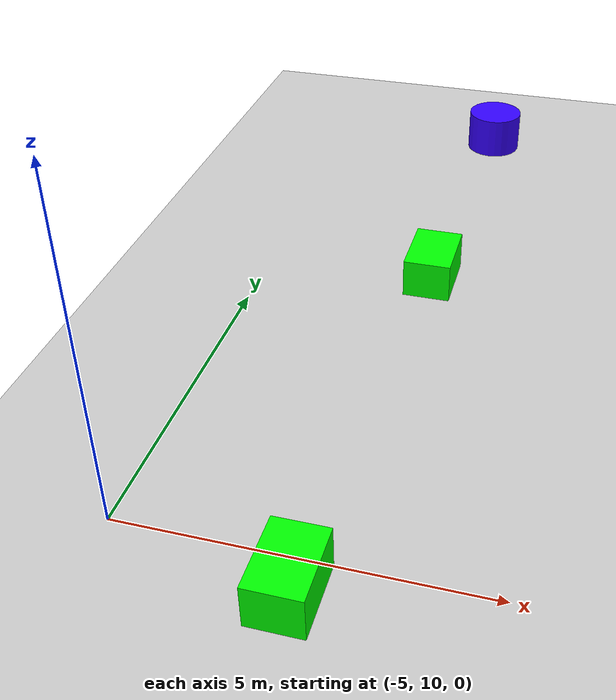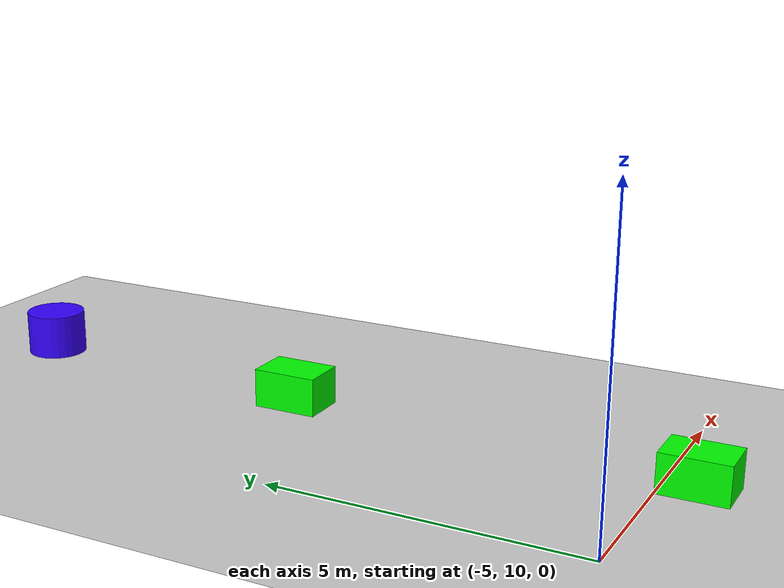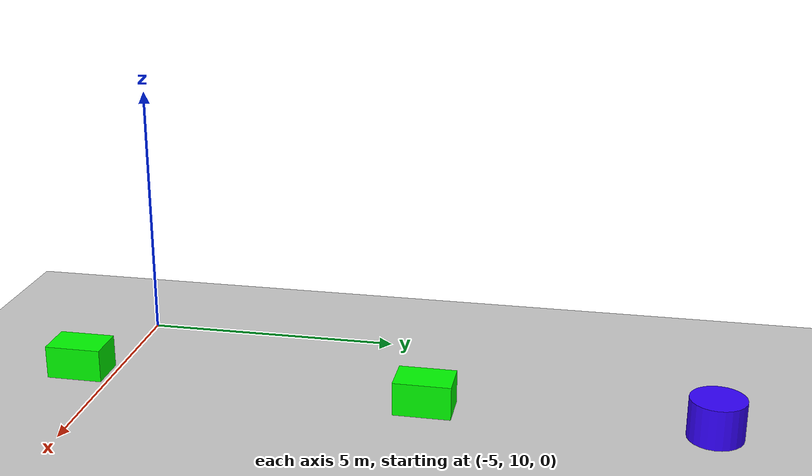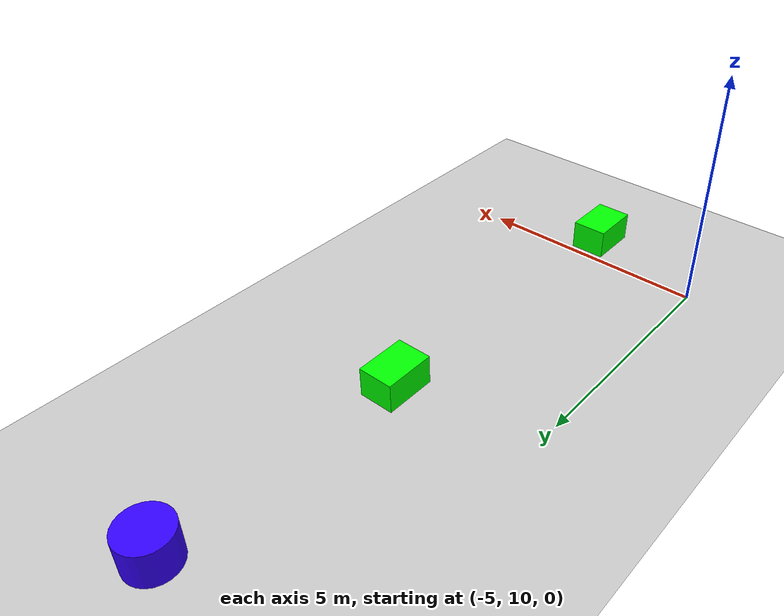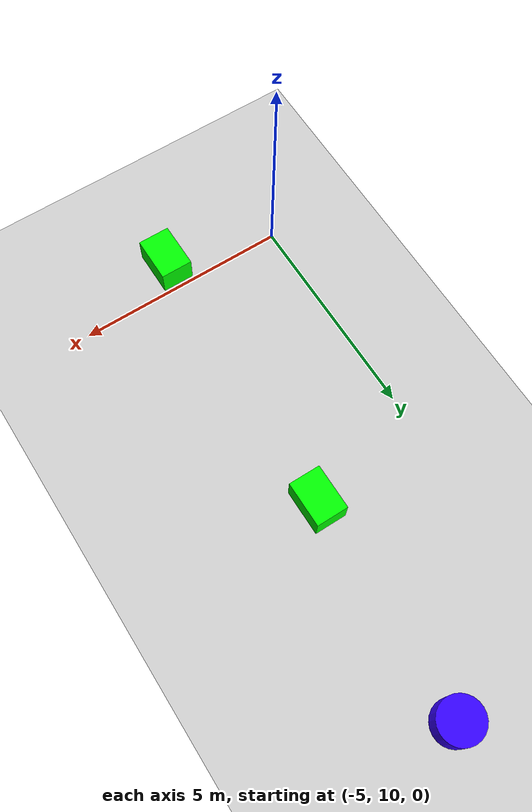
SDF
<sdf version="1.7">
 <world name="default">
  <model name="ground_plane">
   <static>1</static>
   <link name="link">
    <collision name="collision">
     <geometry><plane><normal>0 0 1</normal><size>100 100</size></plane></geometry>
     <surface>
      <contact><collide_bitmask>65535</collide_bitmask></contact>
      <friction><ode><mu>100</mu><mu2>50</mu2></ode></friction>
     </surface>
    </collision>
    <visual name="visual">
     <cast_shadows>0</cast_shadows>
     <geometry><plane><normal>0 0 1</normal><size>100 100</size></plane></geometry>
     <material>
      <script><uri>file://media/materials/scripts/gazebo.material</uri><name>Gazebo/Grey</name></script>
     </material>
    </visual>
   </link>
  </model>
  <model name="green_box_clone_0">
   <link name="link">
    <inertial>
     <mass>1</mass>
     <inertia>
      <ixx>0.166667</ixx>
      <ixy>0</ixy>
      <ixz>0</ixz>
      <iyy>0.166667</iyy>
      <iyz>0</iyz>
      <izz>0.166667</izz>
     </inertia>
    </inertial>
    <visual name="visual">
     <geometry><box><size>0.75 1.07 0.63</size></box></geometry>
     <material>
      <script><name>Gazebo/Grey</name><uri>file://media/materials/scripts/gazebo.material</uri></script>
      <shader type="pixel"><normal_map>__default__</normal_map></shader>
      <ambient>0 1 0 1</ambient>
      <diffuse>0 1 0 1</diffuse>
      <specular>0.01 0.01 0.01 1</specular>
      <emissive>0 0 0 1</emissive>
     </material>
    </visual>
    <collision name="collision">
     <geometry><box><size>0.84 1 0.78</size></box></geometry>
     <surface>
      <friction>
       <ode><mu>1</mu><mu2>1</mu2><fdir1>0 0 0</fdir1><slip1>0</slip1><slip2>0</slip2></ode>
       <torsional>
        <coefficient>1</coefficient>
        <patch_radius>0</patch_radius>
        <surface_radius>0</surface_radius>
        <use_patch_radius>1</use_patch_radius>
        <ode><slip>0</slip></ode>
       </torsional>
      </friction>
      <bounce><restitution_coefficient>0</restitution_coefficient><threshold>1e+06</threshold></bounce>
      <contact>
       <collide_without_contact>0</collide_without_contact>
       <collide_without_contact_bitmask>1</collide_without_contact_bitmask>
       <collide_bitmask>1</collide_bitmask>
       <ode>
        <soft_cfm>0</soft_cfm>
        <soft_erp>0.2</soft_erp>
        <kp>1e+13</kp>
        <kd>1</kd>
        <max_vel>0.01</max_vel>
        <min_depth>0</min_depth>
       </ode>
       <bullet>
        <split_impulse>1</split_impulse>
        <split_impulse_penetration_threshold>-0.01</split_impulse_penetration_threshold>
        <soft_cfm>0</soft_cfm>
        <soft_erp>0.2</soft_erp>
        <kp>1e+13</kp>
        <kd>1</kd>
       </bullet>
      </contact>
     </surface>
    </collision>
   </link>
   <static>0</static>
   <pose>-2.18084 16.1417 0.39 0 -0 0</pose>
  </model>
  <model name="blue_cylinder_2_clone">
   <link name="link">
    <inertial>
     <mass>1</mass>
     <inertia><ixx>0.145833</ixx><ixy>0</ixy><ixz>0</ixz><iyy>0.145833</iyy><iyz>0</iyz><izz>0.125</izz></inertia>
    </inertial>
    <visual name="visual">
     <geometry><cylinder><radius>0.5</radius><length>0.74</length></cylinder></geometry>
     <material>
      <script><name>Gazebo/Grey</name><uri>file://media/materials/scripts/gazebo.material</uri></script>
      <shader type="pixel"><normal_map>__default__</normal_map></shader>
      <ambient>0.2 0 1 1</ambient>
      <diffuse>0.2 0 1 1</diffuse>
      <specular>0.2 0 1 1</specular>
      <emissive>0 0 0 1</emissive>
     </material>
    </visual>
    <collision name="collision">
     <geometry><cylinder><radius>0.5</radius><length>1</length></cylinder></geometry>
     <surface>
      <friction>
       <ode><mu>1</mu><mu2>1</mu2><fdir1>0 0 0</fdir1><slip1>0</slip1><slip2>0</slip2></ode>
       <torsional>
        <coefficient>1</coefficient>
        <patch_radius>0</patch_radius>
        <surface_radius>0</surface_radius>
        <use_patch_radius>1</use_patch_radius>
        <ode><slip>0</slip></ode>
       </torsional>
      </friction>
      <bounce><restitution_coefficient>0</restitution_coefficient><threshold>1e+06</threshold></bounce>
      <contact>
       <collide_without_contact>0</collide_without_contact>
       <collide_without_contact_bitmask>1</collide_without_contact_bitmask>
       <collide_bitmask>1</collide_bitmask>
       <ode>
        <soft_cfm>0</soft_cfm>
        <soft_erp>0.2</soft_erp>
        <kp>1e+13</kp>
        <kd>1</kd>
        <max_vel>0.01</max_vel>
        <min_depth>0</min_depth>
       </ode>
       <bullet>
        <split_impulse>1</split_impulse>
        <split_impulse_penetration_threshold>-0.01</split_impulse_penetration_threshold>
        <soft_cfm>0</soft_cfm>
        <soft_erp>0.2</soft_erp>
        <kp>1e+13</kp>
        <kd>1</kd>
       </bullet>
      </contact>
     </surface>
    </collision>
   </link>
   <static>0</static>
   <pose>-1.97056 21.2673 0.499992 -2e-06 0 0.196656</pose>
  </model>
  <model name="green_box_2">
   <link name="link">
    <inertial>
     <mass>1</mass>
     <inertia>
      <ixx>0.166667</ixx>
      <ixy>0</ixy>
      <ixz>0</ixz>
      <iyy>0.166667</iyy>
      <iyz>0</iyz>
      <izz>0.166667</izz>
     </inertia>
    </inertial>
    <visual name="visual">
     <geometry><box><size>0.75 1.07 0.63</size></box></geometry>
     <material>
      <script><name>Gazebo/Grey</name><uri>file://media/materials/scripts/gazebo.material</uri></script>
      <shader type="pixel"><normal_map>__default__</normal_map></shader>
      <ambient>0 1 0 1</ambient>
      <diffuse>0 1 0 1</diffuse>
      <specular>0.01 0.01 0.01 1</specular>
      <emissive>0 0 0 1</emissive>
     </material>
    </visual>
    <collision name="collision">
     <geometry><box><size>0.84 1 0.78</size></box></geometry>
     <surface>
      <friction>
       <ode><mu>1</mu><mu2>1</mu2><fdir1>0 0 0</fdir1><slip1>0</slip1><slip2>0</slip2></ode>
       <torsional>
        <coefficient>1</coefficient>
        <patch_radius>0</patch_radius>
        <surface_radius>0</surface_radius>
        <use_patch_radius>1</use_patch_radius>
        <ode><slip>0</slip></ode>
       </torsional>
      </friction>
      <bounce><restitution_coefficient>0</restitution_coefficient><threshold>1e+06</threshold></bounce>
      <contact>
       <collide_without_contact>0</collide_without_contact>
       <collide_without_contact_bitmask>1</collide_without_contact_bitmask>
       <collide_bitmask>1</collide_bitmask>
       <ode>
        <soft_cfm>0</soft_cfm>
        <soft_erp>0.2</soft_erp>
        <kp>1e+13</kp>
        <kd>1</kd>
        <max_vel>0.01</max_vel>
        <min_depth>0</min_depth>
       </ode>
       <bullet>
        <split_impulse>1</split_impulse>
        <split_impulse_penetration_threshold>-0.01</split_impulse_penetration_threshold>
        <soft_cfm>0</soft_cfm>
        <soft_erp>0.2</soft_erp>
        <kp>1e+13</kp>
        <kd>1</kd>
       </bullet>
      </contact>
     </surface>
    </collision>
   </link>
   <static>0</static>
   <pose>-2.44282 9.4144 0.39 0 -0 0</pose>
  </model>
 </world>
</sdf>
